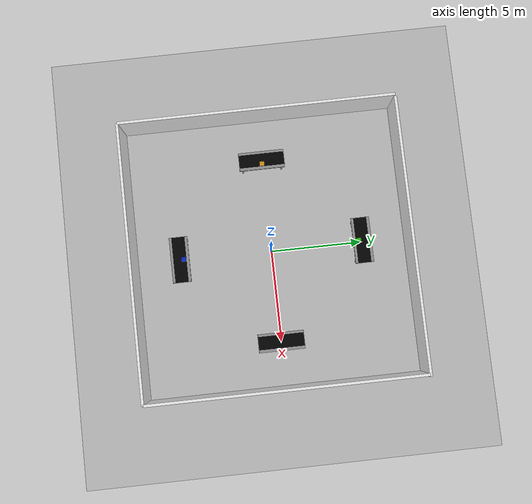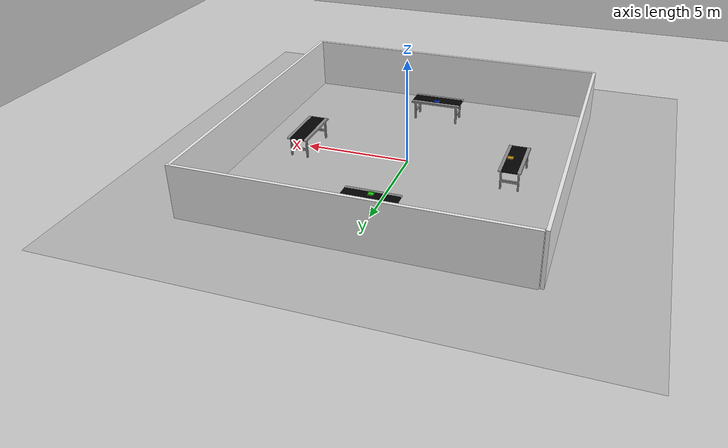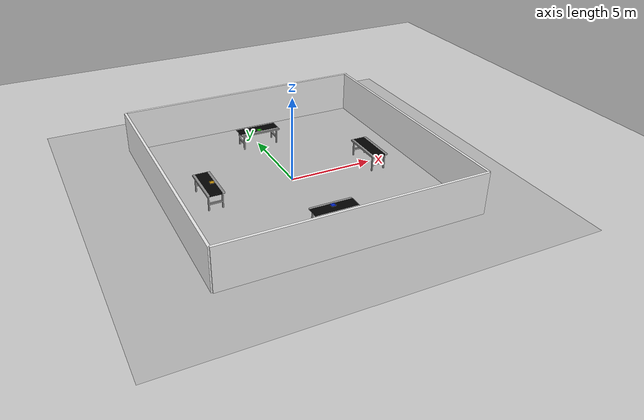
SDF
<sdf version="1.6">
 <world name="default">
  <light name="sun" type="directional">
   <pose>0 0 10 0 -0 0</pose>
   <diffuse>0.8 0.8 0.8 1</diffuse>
   <specular>0.2 0.2 0.2 1</specular>
   <attenuation>
    <range>1000</range>
    <constant>0.9</constant>
    <linear>0.01</linear>
    <quadratic>0.001</quadratic>
   </attenuation>
   <direction>-0.5 0.5 -1</direction>
  </light>
  <model name="ground_plane">
   <static>1</static>
   <link name="link">
    <collision name="collision">
     <geometry><plane><normal>0 0 1</normal><size>100 100</size></plane></geometry>
     <surface>
      <contact><collide_bitmask>65535</collide_bitmask></contact>
      <friction><ode><mu>100</mu><mu2>50</mu2></ode></friction>
     </surface>
    </collision>
    <visual name="visual">
     <cast_shadows>0</cast_shadows>
     <geometry><plane><normal>0 0 1</normal><size>100 100</size></plane></geometry>
     <material>
      <script><uri>file://media/materials/scripts/gazebo.material</uri><name>Gazebo/Grey</name></script>
     </material>
    </visual>
   </link>
  </model>
  <model name="ground_plane">
   <static>1</static>
   <link name="link">
    <collision name="collision">
     <geometry><plane><normal>0 0 1</normal><size>100 100</size></plane></geometry>
     <surface>
      <contact><collide_bitmask>65535</collide_bitmask></contact>
      <friction><ode><mu>100</mu><mu2>50</mu2></ode></friction>
     </surface>
    </collision>
    <visual name="visual">
     <cast_shadows>0</cast_shadows>
     <geometry><plane><normal>0 0 1</normal><size>100 100</size></plane></geometry>
     <material>
      <script><uri>file://media/materials/scripts/gazebo.material</uri><name>Gazebo/Grey</name></script>
     </material>
    </visual>
   </link>
  </model>
  <gravity>0 0 -9.8</gravity>
  <magnetic_field>6e-06 2.3e-05 -4.2e-05</magnetic_field>
  <atmosphere type="adiabatic"/>
  <physics name="default_physics" default="0" type="ode">
   <max_step_size>0.01</max_step_size>
   <real_time_factor>1</real_time_factor>
   <real_time_update_rate>100</real_time_update_rate>
   <ode>
    <solver>
     <type>quick</type>
     <iters>100</iters>
     <precon_iters>0</precon_iters>
     <sor>1</sor>
     <use_dynamic_moi_rescaling>0</use_dynamic_moi_rescaling>
    </solver>
    <constraints>
     <cfm>0</cfm>
     <erp>0.5</erp>
     <contact_max_correcting_vel>1000</contact_max_correcting_vel>
     <contact_surface_layer>0</contact_surface_layer>
    </constraints>
   </ode>
  </physics>
  <scene><ambient>0.4 0.4 0.4 1</ambient><background>0.7 0.7 0.7 1</background><shadows>0</shadows></scene>
  <spherical_coordinates>
   <surface_model>EARTH_WGS84</surface_model>
   <latitude_deg>0</latitude_deg>
   <longitude_deg>0</longitude_deg>
   <elevation>0</elevation>
   <heading_deg>0</heading_deg>
  </spherical_coordinates>
  <audio><device>default</device></audio>
  <model name="ground_logo_corner">
   <static>1</static>
   <link name="link">
    <visual name="visual">
     <pose>0 0 0.001 0 -0 0</pose>
     <geometry>
      <mesh><scale>2 2 2</scale><uri>model://ground_logo_corner/meshes/ground_logo.dae</uri></mesh>
     </geometry>
    </visual>
   </link>
   <pose>0 0 0 0 -0 1.57</pose>
  </model>
  <model name="conveyor">
   <link name="link">
    <inertial>
     <mass>1</mass>
     <inertia><ixx>1</ixx><ixy>0</ixy><ixz>0</ixz><iyy>1</iyy><iyz>0</iyz><izz>1</izz></inertia>
    </inertial>
    <visual name="visual">
     <pose>0 0 0.95 0 -0 0</pose>
     <geometry><mesh><scale>0.5 0.5 0.5</scale><uri>model://conveyor/meshes/conveyor2.dae</uri></mesh></geometry>
    </visual>
    <collision name="collision_0">
     <pose>0 0 0.5 0 -0 0</pose>
     <geometry><box><size>2.5 1 1</size></box></geometry>
     <surface>
      <friction>
       <ode><mu>1</mu><mu2>1</mu2><fdir1>0 0 0</fdir1><slip1>0</slip1><slip2>0</slip2></ode>
       <torsional>
        <coefficient>1</coefficient>
        <patch_radius>0</patch_radius>
        <surface_radius>0</surface_radius>
        <use_patch_radius>1</use_patch_radius>
        <ode><slip>0</slip></ode>
       </torsional>
      </friction>
      <bounce><restitution_coefficient>0</restitution_coefficient><threshold>1e+06</threshold></bounce>
      <contact>
       <collide_without_contact>0</collide_without_contact>
       <collide_without_contact_bitmask>1</collide_without_contact_bitmask>
       <collide_bitmask>1</collide_bitmask>
       <ode>
        <soft_cfm>0</soft_cfm>
        <soft_erp>0.2</soft_erp>
        <kp>1e+13</kp>
        <kd>1</kd>
        <max_vel>0.01</max_vel>
        <min_depth>0</min_depth>
       </ode>
       <bullet>
        <split_impulse>1</split_impulse>
        <split_impulse_penetration_threshold>-0.01</split_impulse_penetration_threshold>
        <soft_cfm>0</soft_cfm>
        <soft_erp>0.2</soft_erp>
        <kp>1e+13</kp>
        <kd>1</kd>
       </bullet>
      </contact>
     </surface>
    </collision>
   </link>
   <static>1</static>
   <pose>0 5 0 0 -0 0</pose>
  </model>
  <model name="conveyor_0">
   <link name="link">
    <inertial>
     <mass>1</mass>
     <inertia><ixx>1</ixx><ixy>0</ixy><ixz>0</ixz><iyy>1</iyy><iyz>0</iyz><izz>1</izz></inertia>
    </inertial>
    <visual name="visual">
     <pose>0 0 0.95 0 -0 0</pose>
     <geometry><mesh><scale>0.5 0.5 0.5</scale><uri>model://conveyor/meshes/conveyor2.dae</uri></mesh></geometry>
    </visual>
    <collision name="collision_0">
     <pose>0 0 0.5 0 -0 0</pose>
     <geometry><box><size>2.5 1 1</size></box></geometry>
     <surface>
      <friction>
       <ode><mu>1</mu><mu2>1</mu2><fdir1>0 0 0</fdir1><slip1>0</slip1><slip2>0</slip2></ode>
       <torsional>
        <coefficient>1</coefficient>
        <patch_radius>0</patch_radius>
        <surface_radius>0</surface_radius>
        <use_patch_radius>1</use_patch_radius>
        <ode><slip>0</slip></ode>
       </torsional>
      </friction>
      <bounce><restitution_coefficient>0</restitution_coefficient><threshold>1e+06</threshold></bounce>
      <contact>
       <collide_without_contact>0</collide_without_contact>
       <collide_without_contact_bitmask>1</collide_without_contact_bitmask>
       <collide_bitmask>1</collide_bitmask>
       <ode>
        <soft_cfm>0</soft_cfm>
        <soft_erp>0.2</soft_erp>
        <kp>1e+13</kp>
        <kd>1</kd>
        <max_vel>0.01</max_vel>
        <min_depth>0</min_depth>
       </ode>
       <bullet>
        <split_impulse>1</split_impulse>
        <split_impulse_penetration_threshold>-0.01</split_impulse_penetration_threshold>
        <soft_cfm>0</soft_cfm>
        <soft_erp>0.2</soft_erp>
        <kp>1e+13</kp>
        <kd>1</kd>
       </bullet>
      </contact>
     </surface>
    </collision>
   </link>
   <static>1</static>
   <pose>0 -5 0 0 -0 0</pose>
  </model>
  <model name="conveyor_1">
   <link name="link">
    <inertial>
     <mass>1</mass>
     <inertia><ixx>1</ixx><ixy>0</ixy><ixz>0</ixz><iyy>1</iyy><iyz>0</iyz><izz>1</izz></inertia>
    </inertial>
    <visual name="visual">
     <pose>0 0 0.95 0 -0 0</pose>
     <geometry><mesh><scale>0.5 0.5 0.5</scale><uri>model://conveyor/meshes/conveyor2.dae</uri></mesh></geometry>
    </visual>
    <collision name="collision_0">
     <pose>0 0 0.5 0 -0 0</pose>
     <geometry><box><size>2.5 1 1</size></box></geometry>
     <surface>
      <friction>
       <ode><mu>1</mu><mu2>1</mu2><fdir1>0 0 0</fdir1><slip1>0</slip1><slip2>0</slip2></ode>
       <torsional>
        <coefficient>1</coefficient>
        <patch_radius>0</patch_radius>
        <surface_radius>0</surface_radius>
        <use_patch_radius>1</use_patch_radius>
        <ode><slip>0</slip></ode>
       </torsional>
      </friction>
      <bounce><restitution_coefficient>0</restitution_coefficient><threshold>1e+06</threshold></bounce>
      <contact>
       <collide_without_contact>0</collide_without_contact>
       <collide_without_contact_bitmask>1</collide_without_contact_bitmask>
       <collide_bitmask>1</collide_bitmask>
       <ode>
        <soft_cfm>0</soft_cfm>
        <soft_erp>0.2</soft_erp>
        <kp>1e+13</kp>
        <kd>1</kd>
        <max_vel>0.01</max_vel>
        <min_depth>0</min_depth>
       </ode>
       <bullet>
        <split_impulse>1</split_impulse>
        <split_impulse_penetration_threshold>-0.01</split_impulse_penetration_threshold>
        <soft_cfm>0</soft_cfm>
        <soft_erp>0.2</soft_erp>
        <kp>1e+13</kp>
        <kd>1</kd>
       </bullet>
      </contact>
     </surface>
    </collision>
   </link>
   <static>1</static>
   <pose>-5 0 0 0 -0 1.57</pose>
  </model>
  <model name="conveyor_2">
   <link name="link">
    <inertial>
     <mass>1</mass>
     <inertia><ixx>1</ixx><ixy>0</ixy><ixz>0</ixz><iyy>1</iyy><iyz>0</iyz><izz>1</izz></inertia>
    </inertial>
    <visual name="visual">
     <pose>0 0 0.95 0 -0 0</pose>
     <geometry><mesh><scale>0.5 0.5 0.5</scale><uri>model://conveyor/meshes/conveyor2.dae</uri></mesh></geometry>
    </visual>
    <collision name="collision_0">
     <pose>0 0 0.5 0 -0 0</pose>
     <geometry><box><size>2.5 1 1</size></box></geometry>
     <surface>
      <friction>
       <ode><mu>1</mu><mu2>1</mu2><fdir1>0 0 0</fdir1><slip1>0</slip1><slip2>0</slip2></ode>
       <torsional>
        <coefficient>1</coefficient>
        <patch_radius>0</patch_radius>
        <surface_radius>0</surface_radius>
        <use_patch_radius>1</use_patch_radius>
        <ode><slip>0</slip></ode>
       </torsional>
      </friction>
      <bounce><restitution_coefficient>0</restitution_coefficient><threshold>1e+06</threshold></bounce>
      <contact>
       <collide_without_contact>0</collide_without_contact>
       <collide_without_contact_bitmask>1</collide_without_contact_bitmask>
       <collide_bitmask>1</collide_bitmask>
       <ode>
        <soft_cfm>0</soft_cfm>
        <soft_erp>0.2</soft_erp>
        <kp>1e+13</kp>
        <kd>1</kd>
        <max_vel>0.01</max_vel>
        <min_depth>0</min_depth>
       </ode>
       <bullet>
        <split_impulse>1</split_impulse>
        <split_impulse_penetration_threshold>-0.01</split_impulse_penetration_threshold>
        <soft_cfm>0</soft_cfm>
        <soft_erp>0.2</soft_erp>
        <kp>1e+13</kp>
        <kd>1</kd>
       </bullet>
      </contact>
     </surface>
    </collision>
   </link>
   <static>1</static>
   <pose>5 0 0 0 -0 1.57</pose>
  </model>
  <model name="wall">
   <link name="Wall_10">
    <inertial>
     <mass>1</mass>
     <inertia><ixx>1</ixx><ixy>0</ixy><ixz>0</ixz><iyy>1</iyy><iyz>0</iyz><izz>1</izz></inertia>
    </inertial>
    <visual name="Wall_10_Visual_0">
     <geometry><box><size>15 0.15 2.5</size></box></geometry>
     <material>
      <script>
       <uri>model://wall/materials/scripts</uri>
       <uri>model://wall/materials/textures</uri>
       <name>wall_white</name>
      </script>
      <shader type="pixel"><normal_map>__default__</normal_map></shader>
      <ambient>1 1 1 1</ambient>
      <diffuse>1 1 1 1</diffuse>
      <specular>0 0 0 1</specular>
      <emissive>0 0 0 1</emissive>
     </material>
     <meta><layer>0</layer></meta>
    </visual>
    <collision name="Wall_10_Collision_0">
     <geometry><box><size>15 0.15 2.5</size></box></geometry>
     <surface>
      <friction>
       <ode><mu>1</mu><mu2>1</mu2><fdir1>0 0 0</fdir1><slip1>0</slip1><slip2>0</slip2></ode>
       <torsional>
        <coefficient>1</coefficient>
        <patch_radius>0</patch_radius>
        <surface_radius>0</surface_radius>
        <use_patch_radius>1</use_patch_radius>
        <ode><slip>0</slip></ode>
       </torsional>
      </friction>
      <bounce><restitution_coefficient>0</restitution_coefficient><threshold>1e+06</threshold></bounce>
      <contact>
       <collide_without_contact>0</collide_without_contact>
       <collide_without_contact_bitmask>1</collide_without_contact_bitmask>
       <collide_bitmask>1</collide_bitmask>
       <ode>
        <soft_cfm>0</soft_cfm>
        <soft_erp>0.2</soft_erp>
        <kp>1e+13</kp>
        <kd>1</kd>
        <max_vel>0.01</max_vel>
        <min_depth>0</min_depth>
       </ode>
       <bullet>
        <split_impulse>1</split_impulse>
        <split_impulse_penetration_threshold>-0.01</split_impulse_penetration_threshold>
        <soft_cfm>0</soft_cfm>
        <soft_erp>0.2</soft_erp>
        <kp>1e+13</kp>
        <kd>1</kd>
       </bullet>
      </contact>
     </surface>
    </collision>
   </link>
   <static>1</static>
   <pose>0 -7.5 1.25 0 -0 0</pose>
  </model>
  <model name="wall_clone">
   <link name="Wall_10">
    <inertial>
     <mass>1</mass>
     <inertia><ixx>1</ixx><ixy>0</ixy><ixz>0</ixz><iyy>1</iyy><iyz>0</iyz><izz>1</izz></inertia>
    </inertial>
    <visual name="Wall_10_Visual_0">
     <geometry><box><size>15 0.15 2.5</size></box></geometry>
     <material>
      <script>
       <uri>model://wall/materials/scripts</uri>
       <uri>model://wall/materials/textures</uri>
       <name>wall_white</name>
      </script>
      <shader type="pixel"><normal_map>__default__</normal_map></shader>
      <ambient>1 1 1 1</ambient>
      <diffuse>1 1 1 1</diffuse>
      <specular>0 0 0 1</specular>
      <emissive>0 0 0 1</emissive>
     </material>
     <meta><layer>0</layer></meta>
    </visual>
    <collision name="Wall_10_Collision_0">
     <geometry><box><size>15 0.15 2.5</size></box></geometry>
     <surface>
      <friction>
       <ode><mu>1</mu><mu2>1</mu2><fdir1>0 0 0</fdir1><slip1>0</slip1><slip2>0</slip2></ode>
       <torsional>
        <coefficient>1</coefficient>
        <patch_radius>0</patch_radius>
        <surface_radius>0</surface_radius>
        <use_patch_radius>1</use_patch_radius>
        <ode><slip>0</slip></ode>
       </torsional>
      </friction>
      <bounce><restitution_coefficient>0</restitution_coefficient><threshold>1e+06</threshold></bounce>
      <contact>
       <collide_without_contact>0</collide_without_contact>
       <collide_without_contact_bitmask>1</collide_without_contact_bitmask>
       <collide_bitmask>1</collide_bitmask>
       <ode>
        <soft_cfm>0</soft_cfm>
        <soft_erp>0.2</soft_erp>
        <kp>1e+13</kp>
        <kd>1</kd>
        <max_vel>0.01</max_vel>
        <min_depth>0</min_depth>
       </ode>
       <bullet>
        <split_impulse>1</split_impulse>
        <split_impulse_penetration_threshold>-0.01</split_impulse_penetration_threshold>
        <soft_cfm>0</soft_cfm>
        <soft_erp>0.2</soft_erp>
        <kp>1e+13</kp>
        <kd>1</kd>
       </bullet>
      </contact>
     </surface>
    </collision>
   </link>
   <static>1</static>
   <pose>0.112197 7.5 1.25 0 -0 0</pose>
  </model>
  <model name="wall_clone_clone">
   <link name="Wall_10">
    <inertial>
     <mass>1</mass>
     <inertia><ixx>1</ixx><ixy>0</ixy><ixz>0</ixz><iyy>1</iyy><iyz>0</iyz><izz>1</izz></inertia>
    </inertial>
    <visual name="Wall_10_Visual_0">
     <geometry><box><size>15 0.15 2.5</size></box></geometry>
     <material>
      <script>
       <uri>model://wall/materials/scripts</uri>
       <uri>model://wall/materials/textures</uri>
       <name>wall_white</name>
      </script>
      <shader type="pixel"><normal_map>__default__</normal_map></shader>
      <ambient>1 1 1 1</ambient>
      <diffuse>1 1 1 1</diffuse>
      <specular>0 0 0 1</specular>
      <emissive>0 0 0 1</emissive>
     </material>
     <meta><layer>0</layer></meta>
    </visual>
    <collision name="Wall_10_Collision_0">
     <geometry><box><size>15 0.15 2.5</size></box></geometry>
     <surface>
      <friction>
       <ode><mu>1</mu><mu2>1</mu2><fdir1>0 0 0</fdir1><slip1>0</slip1><slip2>0</slip2></ode>
       <torsional>
        <coefficient>1</coefficient>
        <patch_radius>0</patch_radius>
        <surface_radius>0</surface_radius>
        <use_patch_radius>1</use_patch_radius>
        <ode><slip>0</slip></ode>
       </torsional>
      </friction>
      <bounce><restitution_coefficient>0</restitution_coefficient><threshold>1e+06</threshold></bounce>
      <contact>
       <collide_without_contact>0</collide_without_contact>
       <collide_without_contact_bitmask>1</collide_without_contact_bitmask>
       <collide_bitmask>1</collide_bitmask>
       <ode>
        <soft_cfm>0</soft_cfm>
        <soft_erp>0.2</soft_erp>
        <kp>1e+13</kp>
        <kd>1</kd>
        <max_vel>0.01</max_vel>
        <min_depth>0</min_depth>
       </ode>
       <bullet>
        <split_impulse>1</split_impulse>
        <split_impulse_penetration_threshold>-0.01</split_impulse_penetration_threshold>
        <soft_cfm>0</soft_cfm>
        <soft_erp>0.2</soft_erp>
        <kp>1e+13</kp>
        <kd>1</kd>
       </bullet>
      </contact>
     </surface>
    </collision>
   </link>
   <static>1</static>
   <pose>7.5 0 1.25 0 -0 1.57</pose>
  </model>
  <model name="wall_clone_clone_clone">
   <link name="Wall_10">
    <inertial>
     <mass>1</mass>
     <inertia><ixx>1</ixx><ixy>0</ixy><ixz>0</ixz><iyy>1</iyy><iyz>0</iyz><izz>1</izz></inertia>
    </inertial>
    <visual name="Wall_10_Visual_0">
     <geometry><box><size>15 0.15 2.5</size></box></geometry>
     <material>
      <script>
       <uri>model://wall/materials/scripts</uri>
       <uri>model://wall/materials/textures</uri>
       <name>wall_white</name>
      </script>
      <shader type="pixel"><normal_map>__default__</normal_map></shader>
      <ambient>1 1 1 1</ambient>
      <diffuse>1 1 1 1</diffuse>
      <specular>0 0 0 1</specular>
      <emissive>0 0 0 1</emissive>
     </material>
     <meta><layer>0</layer></meta>
    </visual>
    <collision name="Wall_10_Collision_0">
     <geometry><box><size>15 0.15 2.5</size></box></geometry>
     <surface>
      <friction>
       <ode><mu>1</mu><mu2>1</mu2><fdir1>0 0 0</fdir1><slip1>0</slip1><slip2>0</slip2></ode>
       <torsional>
        <coefficient>1</coefficient>
        <patch_radius>0</patch_radius>
        <surface_radius>0</surface_radius>
        <use_patch_radius>1</use_patch_radius>
        <ode><slip>0</slip></ode>
       </torsional>
      </friction>
      <bounce><restitution_coefficient>0</restitution_coefficient><threshold>1e+06</threshold></bounce>
      <contact>
       <collide_without_contact>0</collide_without_contact>
       <collide_without_contact_bitmask>1</collide_without_contact_bitmask>
       <collide_bitmask>1</collide_bitmask>
       <ode>
        <soft_cfm>0</soft_cfm>
        <soft_erp>0.2</soft_erp>
        <kp>1e+13</kp>
        <kd>1</kd>
        <max_vel>0.01</max_vel>
        <min_depth>0</min_depth>
       </ode>
       <bullet>
        <split_impulse>1</split_impulse>
        <split_impulse_penetration_threshold>-0.01</split_impulse_penetration_threshold>
        <soft_cfm>0</soft_cfm>
        <soft_erp>0.2</soft_erp>
        <kp>1e+13</kp>
        <kd>1</kd>
       </bullet>
      </contact>
     </surface>
    </collision>
   </link>
   <static>1</static>
   <pose>-7.5 0 1.25 0 -0 1.57</pose>
  </model>
  <model name="yellow_tray">
   <static>1</static>
   <link name="link">
    <inertial>
     <mass>1</mass>
     <inertia><ixx>1</ixx><ixy>0</ixy><ixz>0</ixz><iyy>1</iyy><iyz>0</iyz><izz>1</izz></inertia>
    </inertial>
    <visual name="visual">
     <pose>0 0 0.005 0 -0 0</pose>
     <geometry>
      <mesh><scale>0.5 0.5 0.5</scale><uri>model://yellow_tray/meshes/yellow_tray.dae</uri></mesh>
     </geometry>
    </visual>
    <collision name="front_wall">
     <pose>0.12 0 0.015 0 -0 0</pose>
     <geometry><box><size>0.008 0.25 0.03</size></box></geometry>
     <surface>
      <friction>
       <ode><mu>1</mu><mu2>1</mu2><fdir1>0 0 0</fdir1><slip1>0</slip1><slip2>0</slip2></ode>
       <torsional>
        <coefficient>1</coefficient>
        <patch_radius>0</patch_radius>
        <surface_radius>0</surface_radius>
        <use_patch_radius>1</use_patch_radius>
        <ode><slip>0</slip></ode>
       </torsional>
      </friction>
      <bounce><restitution_coefficient>0</restitution_coefficient><threshold>1e+06</threshold></bounce>
      <contact>
       <collide_without_contact>0</collide_without_contact>
       <collide_without_contact_bitmask>1</collide_without_contact_bitmask>
       <collide_bitmask>1</collide_bitmask>
       <ode>
        <soft_cfm>0</soft_cfm>
        <soft_erp>0.2</soft_erp>
        <kp>1e+13</kp>
        <kd>1</kd>
        <max_vel>0.01</max_vel>
        <min_depth>0</min_depth>
       </ode>
       <bullet>
        <split_impulse>1</split_impulse>
        <split_impulse_penetration_threshold>-0.01</split_impulse_penetration_threshold>
        <soft_cfm>0</soft_cfm>
        <soft_erp>0.2</soft_erp>
        <kp>1e+13</kp>
        <kd>1</kd>
       </bullet>
      </contact>
     </surface>
    </collision>
    <collision name="right_wall">
     <pose>0 -0.12 0.015 0 -0 0</pose>
     <geometry><box><size>0.25 0.012 0.03</size></box></geometry>
     <surface>
      <friction>
       <ode><mu>1</mu><mu2>1</mu2><fdir1>0 0 0</fdir1><slip1>0</slip1><slip2>0</slip2></ode>
       <torsional>
        <coefficient>1</coefficient>
        <patch_radius>0</patch_radius>
        <surface_radius>0</surface_radius>
        <use_patch_radius>1</use_patch_radius>
        <ode><slip>0</slip></ode>
       </torsional>
      </friction>
      <bounce><restitution_coefficient>0</restitution_coefficient><threshold>1e+06</threshold></bounce>
      <contact>
       <collide_without_contact>0</collide_without_contact>
       <collide_without_contact_bitmask>1</collide_without_contact_bitmask>
       <collide_bitmask>1</collide_bitmask>
       <ode>
        <soft_cfm>0</soft_cfm>
        <soft_erp>0.2</soft_erp>
        <kp>1e+13</kp>
        <kd>1</kd>
        <max_vel>0.01</max_vel>
        <min_depth>0</min_depth>
       </ode>
       <bullet>
        <split_impulse>1</split_impulse>
        <split_impulse_penetration_threshold>-0.01</split_impulse_penetration_threshold>
        <soft_cfm>0</soft_cfm>
        <soft_erp>0.2</soft_erp>
        <kp>1e+13</kp>
        <kd>1</kd>
       </bullet>
      </contact>
     </surface>
    </collision>
    <collision name="bottom">
     <geometry><box><size>0.25 0.25 0.01</size></box></geometry>
     <surface>
      <friction>
       <ode><mu>1</mu><mu2>1</mu2><fdir1>0 0 0</fdir1><slip1>0</slip1><slip2>0</slip2></ode>
       <torsional>
        <coefficient>1</coefficient>
        <patch_radius>0</patch_radius>
        <surface_radius>0</surface_radius>
        <use_patch_radius>1</use_patch_radius>
        <ode><slip>0</slip></ode>
       </torsional>
      </friction>
      <bounce><restitution_coefficient>0</restitution_coefficient><threshold>1e+06</threshold></bounce>
      <contact>
       <collide_without_contact>0</collide_without_contact>
       <collide_without_contact_bitmask>1</collide_without_contact_bitmask>
       <collide_bitmask>1</collide_bitmask>
       <ode>
        <soft_cfm>0</soft_cfm>
        <soft_erp>0.2</soft_erp>
        <kp>1e+13</kp>
        <kd>1</kd>
        <max_vel>0.01</max_vel>
        <min_depth>0</min_depth>
       </ode>
       <bullet>
        <split_impulse>1</split_impulse>
        <split_impulse_penetration_threshold>-0.01</split_impulse_penetration_threshold>
        <soft_cfm>0</soft_cfm>
        <soft_erp>0.2</soft_erp>
        <kp>1e+13</kp>
        <kd>1</kd>
       </bullet>
      </contact>
     </surface>
    </collision>
    <collision name="left_wall">
     <pose>0 0.12 0.015 0 -0 0</pose>
     <geometry><box><size>0.25 0.012 0.03</size></box></geometry>
     <surface>
      <friction>
       <ode><mu>1</mu><mu2>1</mu2><fdir1>0 0 0</fdir1><slip1>0</slip1><slip2>0</slip2></ode>
       <torsional>
        <coefficient>1</coefficient>
        <patch_radius>0</patch_radius>
        <surface_radius>0</surface_radius>
        <use_patch_radius>1</use_patch_radius>
        <ode><slip>0</slip></ode>
       </torsional>
      </friction>
      <bounce><restitution_coefficient>0</restitution_coefficient><threshold>1e+06</threshold></bounce>
      <contact>
       <collide_without_contact>0</collide_without_contact>
       <collide_without_contact_bitmask>1</collide_without_contact_bitmask>
       <collide_bitmask>1</collide_bitmask>
       <ode>
        <soft_cfm>0</soft_cfm>
        <soft_erp>0.2</soft_erp>
        <kp>1e+13</kp>
        <kd>1</kd>
        <max_vel>0.01</max_vel>
        <min_depth>0</min_depth>
       </ode>
       <bullet>
        <split_impulse>1</split_impulse>
        <split_impulse_penetration_threshold>-0.01</split_impulse_penetration_threshold>
        <soft_cfm>0</soft_cfm>
        <soft_erp>0.2</soft_erp>
        <kp>1e+13</kp>
        <kd>1</kd>
       </bullet>
      </contact>
     </surface>
    </collision>
    <collision name="back_wall">
     <pose>-0.12 0 0.015 0 -0 0</pose>
     <geometry><box><size>0.008 0.25 0.03</size></box></geometry>
     <surface>
      <friction>
       <ode><mu>1</mu><mu2>1</mu2><fdir1>0 0 0</fdir1><slip1>0</slip1><slip2>0</slip2></ode>
       <torsional>
        <coefficient>1</coefficient>
        <patch_radius>0</patch_radius>
        <surface_radius>0</surface_radius>
        <use_patch_radius>1</use_patch_radius>
        <ode><slip>0</slip></ode>
       </torsional>
      </friction>
      <bounce><restitution_coefficient>0</restitution_coefficient><threshold>1e+06</threshold></bounce>
      <contact>
       <collide_without_contact>0</collide_without_contact>
       <collide_without_contact_bitmask>1</collide_without_contact_bitmask>
       <collide_bitmask>1</collide_bitmask>
       <ode>
        <soft_cfm>0</soft_cfm>
        <soft_erp>0.2</soft_erp>
        <kp>1e+13</kp>
        <kd>1</kd>
        <max_vel>0.01</max_vel>
        <min_depth>0</min_depth>
       </ode>
       <bullet>
        <split_impulse>1</split_impulse>
        <split_impulse_penetration_threshold>-0.01</split_impulse_penetration_threshold>
        <soft_cfm>0</soft_cfm>
        <soft_erp>0.2</soft_erp>
        <kp>1e+13</kp>
        <kd>1</kd>
       </bullet>
      </contact>
     </surface>
    </collision>
   </link>
   <static>1</static>
   <pose>-4.8 0 1 0 -0 0</pose>
  </model>
  <model name="green_tray">
   <static>1</static>
   <link name="link">
    <inertial>
     <mass>1</mass>
     <inertia><ixx>1</ixx><ixy>0</ixy><ixz>0</ixz><iyy>1</iyy><iyz>0</iyz><izz>1</izz></inertia>
    </inertial>
    <visual name="visual">
     <pose>0 0 0.005 0 -0 0</pose>
     <geometry>
      <mesh><scale>0.5 0.5 0.5</scale><uri>model://green_tray/meshes/green_tray.dae</uri></mesh>
     </geometry>
    </visual>
    <collision name="front_wall">
     <pose>0.12 0 0.015 0 -0 0</pose>
     <geometry><box><size>0.008 0.25 0.03</size></box></geometry>
     <surface>
      <friction>
       <ode><mu>1</mu><mu2>1</mu2><fdir1>0 0 0</fdir1><slip1>0</slip1><slip2>0</slip2></ode>
       <torsional>
        <coefficient>1</coefficient>
        <patch_radius>0</patch_radius>
        <surface_radius>0</surface_radius>
        <use_patch_radius>1</use_patch_radius>
        <ode><slip>0</slip></ode>
       </torsional>
      </friction>
      <bounce><restitution_coefficient>0</restitution_coefficient><threshold>1e+06</threshold></bounce>
      <contact>
       <collide_without_contact>0</collide_without_contact>
       <collide_without_contact_bitmask>1</collide_without_contact_bitmask>
       <collide_bitmask>1</collide_bitmask>
       <ode>
        <soft_cfm>0</soft_cfm>
        <soft_erp>0.2</soft_erp>
        <kp>1e+13</kp>
        <kd>1</kd>
        <max_vel>0.01</max_vel>
        <min_depth>0</min_depth>
       </ode>
       <bullet>
        <split_impulse>1</split_impulse>
        <split_impulse_penetration_threshold>-0.01</split_impulse_penetration_threshold>
        <soft_cfm>0</soft_cfm>
        <soft_erp>0.2</soft_erp>
        <kp>1e+13</kp>
        <kd>1</kd>
       </bullet>
      </contact>
     </surface>
    </collision>
    <collision name="right_wall">
     <pose>0 -0.12 0.015 0 -0 0</pose>
     <geometry><box><size>0.25 0.012 0.03</size></box></geometry>
     <surface>
      <friction>
       <ode><mu>1</mu><mu2>1</mu2><fdir1>0 0 0</fdir1><slip1>0</slip1><slip2>0</slip2></ode>
       <torsional>
        <coefficient>1</coefficient>
        <patch_radius>0</patch_radius>
        <surface_radius>0</surface_radius>
        <use_patch_radius>1</use_patch_radius>
        <ode><slip>0</slip></ode>
       </torsional>
      </friction>
      <bounce><restitution_coefficient>0</restitution_coefficient><threshold>1e+06</threshold></bounce>
      <contact>
       <collide_without_contact>0</collide_without_contact>
       <collide_without_contact_bitmask>1</collide_without_contact_bitmask>
       <collide_bitmask>1</collide_bitmask>
       <ode>
        <soft_cfm>0</soft_cfm>
        <soft_erp>0.2</soft_erp>
        <kp>1e+13</kp>
        <kd>1</kd>
        <max_vel>0.01</max_vel>
        <min_depth>0</min_depth>
       </ode>
       <bullet>
        <split_impulse>1</split_impulse>
        <split_impulse_penetration_threshold>-0.01</split_impulse_penetration_threshold>
        <soft_cfm>0</soft_cfm>
        <soft_erp>0.2</soft_erp>
        <kp>1e+13</kp>
        <kd>1</kd>
       </bullet>
      </contact>
     </surface>
    </collision>
    <collision name="bottom">
     <geometry><box><size>0.25 0.25 0.01</size></box></geometry>
     <surface>
      <friction>
       <ode><mu>1</mu><mu2>1</mu2><fdir1>0 0 0</fdir1><slip1>0</slip1><slip2>0</slip2></ode>
       <torsional>
        <coefficient>1</coefficient>
        <patch_radius>0</patch_radius>
        <surface_radius>0</surface_radius>
        <use_patch_radius>1</use_patch_radius>
        <ode><slip>0</slip></ode>
       </torsional>
      </friction>
      <bounce><restitution_coefficient>0</restitution_coefficient><threshold>1e+06</threshold></bounce>
      <contact>
       <collide_without_contact>0</collide_without_contact>
       <collide_without_contact_bitmask>1</collide_without_contact_bitmask>
       <collide_bitmask>1</collide_bitmask>
       <ode>
        <soft_cfm>0</soft_cfm>
        <soft_erp>0.2</soft_erp>
        <kp>1e+13</kp>
        <kd>1</kd>
        <max_vel>0.01</max_vel>
        <min_depth>0</min_depth>
       </ode>
       <bullet>
        <split_impulse>1</split_impulse>
        <split_impulse_penetration_threshold>-0.01</split_impulse_penetration_threshold>
        <soft_cfm>0</soft_cfm>
        <soft_erp>0.2</soft_erp>
        <kp>1e+13</kp>
        <kd>1</kd>
       </bullet>
      </contact>
     </surface>
    </collision>
    <collision name="left_wall">
     <pose>0 0.12 0.015 0 -0 0</pose>
     <geometry><box><size>0.25 0.012 0.03</size></box></geometry>
     <surface>
      <friction>
       <ode><mu>1</mu><mu2>1</mu2><fdir1>0 0 0</fdir1><slip1>0</slip1><slip2>0</slip2></ode>
       <torsional>
        <coefficient>1</coefficient>
        <patch_radius>0</patch_radius>
        <surface_radius>0</surface_radius>
        <use_patch_radius>1</use_patch_radius>
        <ode><slip>0</slip></ode>
       </torsional>
      </friction>
      <bounce><restitution_coefficient>0</restitution_coefficient><threshold>1e+06</threshold></bounce>
      <contact>
       <collide_without_contact>0</collide_without_contact>
       <collide_without_contact_bitmask>1</collide_without_contact_bitmask>
       <collide_bitmask>1</collide_bitmask>
       <ode>
        <soft_cfm>0</soft_cfm>
        <soft_erp>0.2</soft_erp>
        <kp>1e+13</kp>
        <kd>1</kd>
        <max_vel>0.01</max_vel>
        <min_depth>0</min_depth>
       </ode>
       <bullet>
        <split_impulse>1</split_impulse>
        <split_impulse_penetration_threshold>-0.01</split_impulse_penetration_threshold>
        <soft_cfm>0</soft_cfm>
        <soft_erp>0.2</soft_erp>
        <kp>1e+13</kp>
        <kd>1</kd>
       </bullet>
      </contact>
     </surface>
    </collision>
    <collision name="back_wall">
     <pose>-0.12 0 0.015 0 -0 0</pose>
     <geometry><box><size>0.008 0.25 0.03</size></box></geometry>
     <surface>
      <friction>
       <ode><mu>1</mu><mu2>1</mu2><fdir1>0 0 0</fdir1><slip1>0</slip1><slip2>0</slip2></ode>
       <torsional>
        <coefficient>1</coefficient>
        <patch_radius>0</patch_radius>
        <surface_radius>0</surface_radius>
        <use_patch_radius>1</use_patch_radius>
        <ode><slip>0</slip></ode>
       </torsional>
      </friction>
      <bounce><restitution_coefficient>0</restitution_coefficient><threshold>1e+06</threshold></bounce>
      <contact>
       <collide_without_contact>0</collide_without_contact>
       <collide_without_contact_bitmask>1</collide_without_contact_bitmask>
       <collide_bitmask>1</collide_bitmask>
       <ode>
        <soft_cfm>0</soft_cfm>
        <soft_erp>0.2</soft_erp>
        <kp>1e+13</kp>
        <kd>1</kd>
        <max_vel>0.01</max_vel>
        <min_depth>0</min_depth>
       </ode>
       <bullet>
        <split_impulse>1</split_impulse>
        <split_impulse_penetration_threshold>-0.01</split_impulse_penetration_threshold>
        <soft_cfm>0</soft_cfm>
        <soft_erp>0.2</soft_erp>
        <kp>1e+13</kp>
        <kd>1</kd>
       </bullet>
      </contact>
     </surface>
    </collision>
   </link>
   <static>1</static>
   <pose>0 4.8 1 0 -0 0</pose>
  </model>
  <model name="blue_tray">
   <static>1</static>
   <link name="link">
    <inertial>
     <mass>1</mass>
     <inertia><ixx>1</ixx><ixy>0</ixy><ixz>0</ixz><iyy>1</iyy><iyz>0</iyz><izz>1</izz></inertia>
    </inertial>
    <visual name="visual">
     <pose>0 0 0.005 0 -0 0</pose>
     <geometry><mesh><scale>0.5 0.5 0.5</scale><uri>model://blue_tray/meshes/blue_tray.dae</uri></mesh></geometry>
    </visual>
    <collision name="front_wall">
     <pose>0.12 0 0.015 0 -0 0</pose>
     <geometry><box><size>0.008 0.25 0.03</size></box></geometry>
     <surface>
      <friction>
       <ode><mu>1</mu><mu2>1</mu2><fdir1>0 0 0</fdir1><slip1>0</slip1><slip2>0</slip2></ode>
       <torsional>
        <coefficient>1</coefficient>
        <patch_radius>0</patch_radius>
        <surface_radius>0</surface_radius>
        <use_patch_radius>1</use_patch_radius>
        <ode><slip>0</slip></ode>
       </torsional>
      </friction>
      <bounce><restitution_coefficient>0</restitution_coefficient><threshold>1e+06</threshold></bounce>
      <contact>
       <collide_without_contact>0</collide_without_contact>
       <collide_without_contact_bitmask>1</collide_without_contact_bitmask>
       <collide_bitmask>1</collide_bitmask>
       <ode>
        <soft_cfm>0</soft_cfm>
        <soft_erp>0.2</soft_erp>
        <kp>1e+13</kp>
        <kd>1</kd>
        <max_vel>0.01</max_vel>
        <min_depth>0</min_depth>
       </ode>
       <bullet>
        <split_impulse>1</split_impulse>
        <split_impulse_penetration_threshold>-0.01</split_impulse_penetration_threshold>
        <soft_cfm>0</soft_cfm>
        <soft_erp>0.2</soft_erp>
        <kp>1e+13</kp>
        <kd>1</kd>
       </bullet>
      </contact>
     </surface>
    </collision>
    <collision name="right_wall">
     <pose>0 -0.12 0.015 0 -0 0</pose>
     <geometry><box><size>0.25 0.012 0.03</size></box></geometry>
     <surface>
      <friction>
       <ode><mu>1</mu><mu2>1</mu2><fdir1>0 0 0</fdir1><slip1>0</slip1><slip2>0</slip2></ode>
       <torsional>
        <coefficient>1</coefficient>
        <patch_radius>0</patch_radius>
        <surface_radius>0</surface_radius>
        <use_patch_radius>1</use_patch_radius>
        <ode><slip>0</slip></ode>
       </torsional>
      </friction>
      <bounce><restitution_coefficient>0</restitution_coefficient><threshold>1e+06</threshold></bounce>
      <contact>
       <collide_without_contact>0</collide_without_contact>
       <collide_without_contact_bitmask>1</collide_without_contact_bitmask>
       <collide_bitmask>1</collide_bitmask>
       <ode>
        <soft_cfm>0</soft_cfm>
        <soft_erp>0.2</soft_erp>
        <kp>1e+13</kp>
        <kd>1</kd>
        <max_vel>0.01</max_vel>
        <min_depth>0</min_depth>
       </ode>
       <bullet>
        <split_impulse>1</split_impulse>
        <split_impulse_penetration_threshold>-0.01</split_impulse_penetration_threshold>
        <soft_cfm>0</soft_cfm>
        <soft_erp>0.2</soft_erp>
        <kp>1e+13</kp>
        <kd>1</kd>
       </bullet>
      </contact>
     </surface>
    </collision>
    <collision name="bottom">
     <geometry><box><size>0.25 0.25 0.01</size></box></geometry>
     <surface>
      <friction>
       <ode><mu>1</mu><mu2>1</mu2><fdir1>0 0 0</fdir1><slip1>0</slip1><slip2>0</slip2></ode>
       <torsional>
        <coefficient>1</coefficient>
        <patch_radius>0</patch_radius>
        <surface_radius>0</surface_radius>
        <use_patch_radius>1</use_patch_radius>
        <ode><slip>0</slip></ode>
       </torsional>
      </friction>
      <bounce><restitution_coefficient>0</restitution_coefficient><threshold>1e+06</threshold></bounce>
      <contact>
       <collide_without_contact>0</collide_without_contact>
       <collide_without_contact_bitmask>1</collide_without_contact_bitmask>
       <collide_bitmask>1</collide_bitmask>
       <ode>
        <soft_cfm>0</soft_cfm>
        <soft_erp>0.2</soft_erp>
        <kp>1e+13</kp>
        <kd>1</kd>
        <max_vel>0.01</max_vel>
        <min_depth>0</min_depth>
       </ode>
       <bullet>
        <split_impulse>1</split_impulse>
        <split_impulse_penetration_threshold>-0.01</split_impulse_penetration_threshold>
        <soft_cfm>0</soft_cfm>
        <soft_erp>0.2</soft_erp>
        <kp>1e+13</kp>
        <kd>1</kd>
       </bullet>
      </contact>
     </surface>
    </collision>
    <collision name="left_wall">
     <pose>0 0.12 0.015 0 -0 0</pose>
     <geometry><box><size>0.25 0.012 0.03</size></box></geometry>
     <surface>
      <friction>
       <ode><mu>1</mu><mu2>1</mu2><fdir1>0 0 0</fdir1><slip1>0</slip1><slip2>0</slip2></ode>
       <torsional>
        <coefficient>1</coefficient>
        <patch_radius>0</patch_radius>
        <surface_radius>0</surface_radius>
        <use_patch_radius>1</use_patch_radius>
        <ode><slip>0</slip></ode>
       </torsional>
      </friction>
      <bounce><restitution_coefficient>0</restitution_coefficient><threshold>1e+06</threshold></bounce>
      <contact>
       <collide_without_contact>0</collide_without_contact>
       <collide_without_contact_bitmask>1</collide_without_contact_bitmask>
       <collide_bitmask>1</collide_bitmask>
       <ode>
        <soft_cfm>0</soft_cfm>
        <soft_erp>0.2</soft_erp>
        <kp>1e+13</kp>
        <kd>1</kd>
        <max_vel>0.01</max_vel>
        <min_depth>0</min_depth>
       </ode>
       <bullet>
        <split_impulse>1</split_impulse>
        <split_impulse_penetration_threshold>-0.01</split_impulse_penetration_threshold>
        <soft_cfm>0</soft_cfm>
        <soft_erp>0.2</soft_erp>
        <kp>1e+13</kp>
        <kd>1</kd>
       </bullet>
      </contact>
     </surface>
    </collision>
    <collision name="back_wall">
     <pose>-0.12 0 0.015 0 -0 0</pose>
     <geometry><box><size>0.008 0.25 0.03</size></box></geometry>
     <surface>
      <friction>
       <ode><mu>1</mu><mu2>1</mu2><fdir1>0 0 0</fdir1><slip1>0</slip1><slip2>0</slip2></ode>
       <torsional>
        <coefficient>1</coefficient>
        <patch_radius>0</patch_radius>
        <surface_radius>0</surface_radius>
        <use_patch_radius>1</use_patch_radius>
        <ode><slip>0</slip></ode>
       </torsional>
      </friction>
      <bounce><restitution_coefficient>0</restitution_coefficient><threshold>1e+06</threshold></bounce>
      <contact>
       <collide_without_contact>0</collide_without_contact>
       <collide_without_contact_bitmask>1</collide_without_contact_bitmask>
       <collide_bitmask>1</collide_bitmask>
       <ode>
        <soft_cfm>0</soft_cfm>
        <soft_erp>0.2</soft_erp>
        <kp>1e+13</kp>
        <kd>1</kd>
        <max_vel>0.01</max_vel>
        <min_depth>0</min_depth>
       </ode>
       <bullet>
        <split_impulse>1</split_impulse>
        <split_impulse_penetration_threshold>-0.01</split_impulse_penetration_threshold>
        <soft_cfm>0</soft_cfm>
        <soft_erp>0.2</soft_erp>
        <kp>1e+13</kp>
        <kd>1</kd>
       </bullet>
      </contact>
     </surface>
    </collision>
   </link>
   <static>1</static>
   <pose>0 -4.8 1 0 -0 0</pose>
  </model>
 </world>
</sdf>
